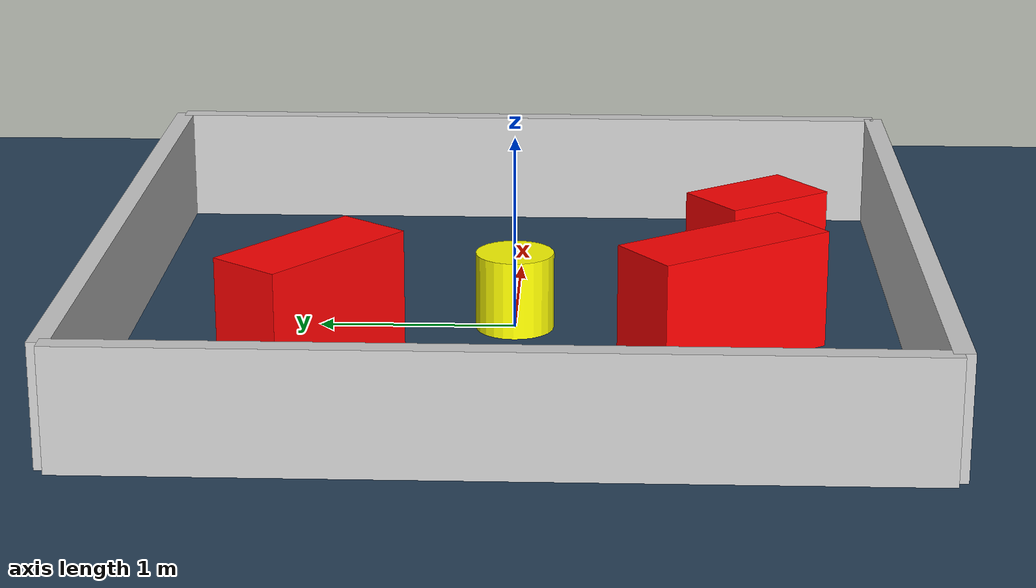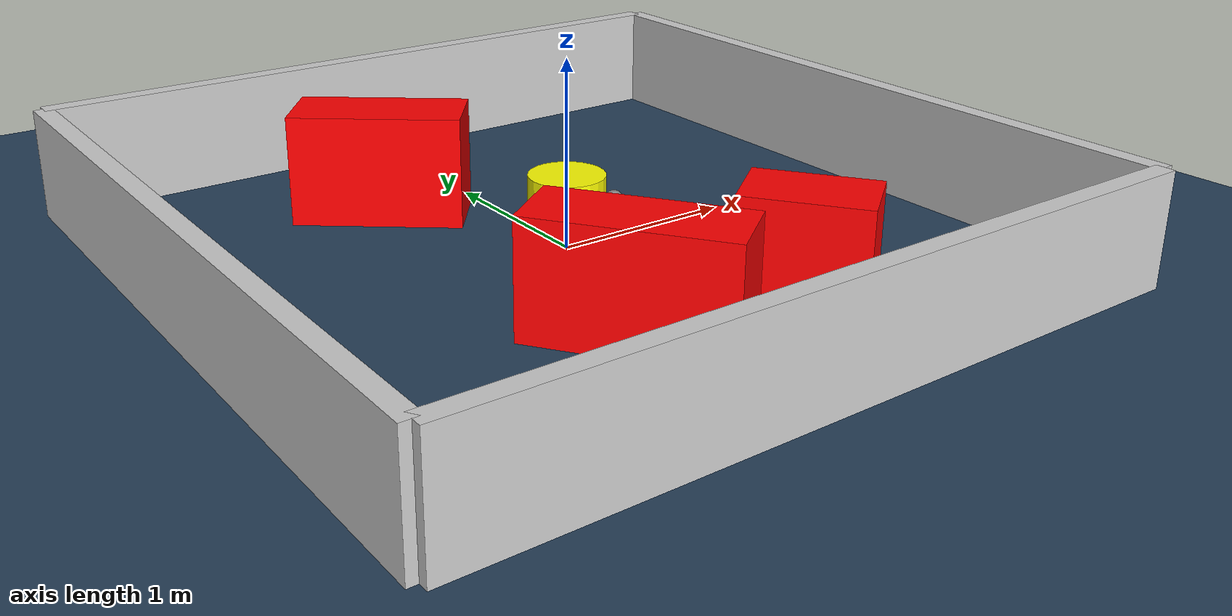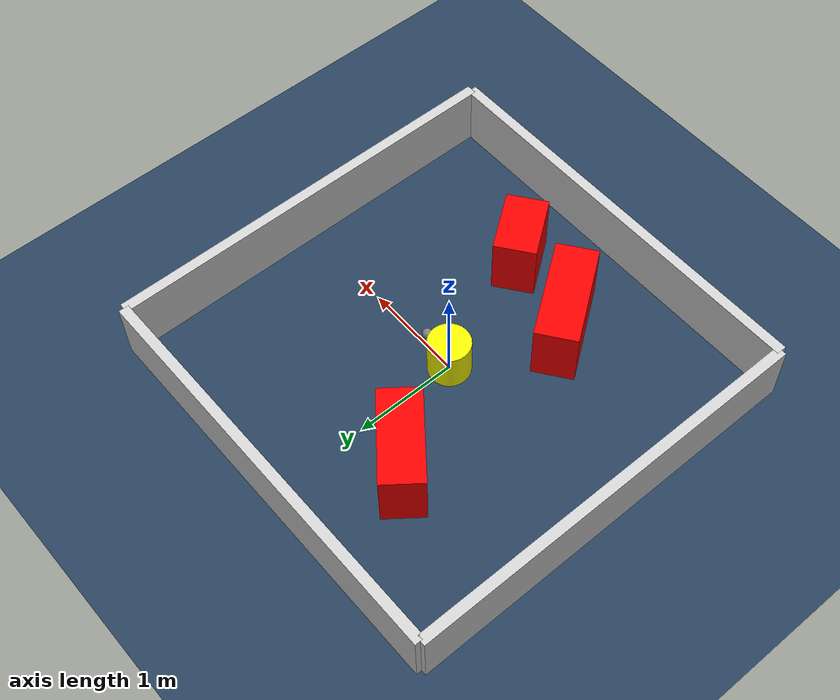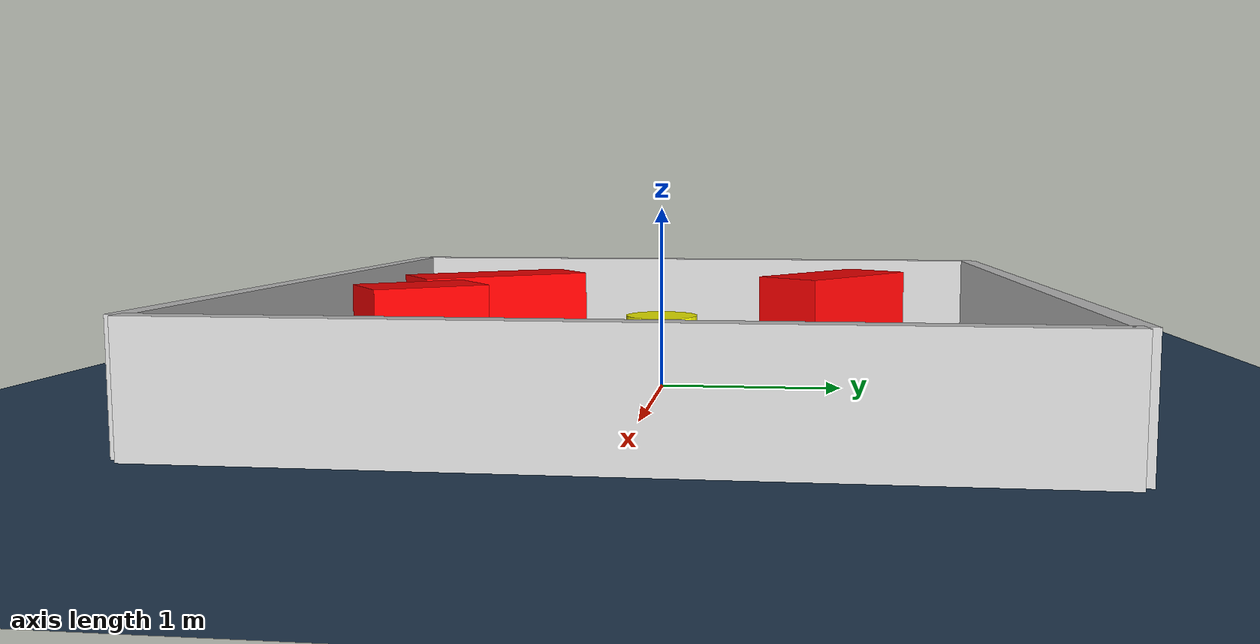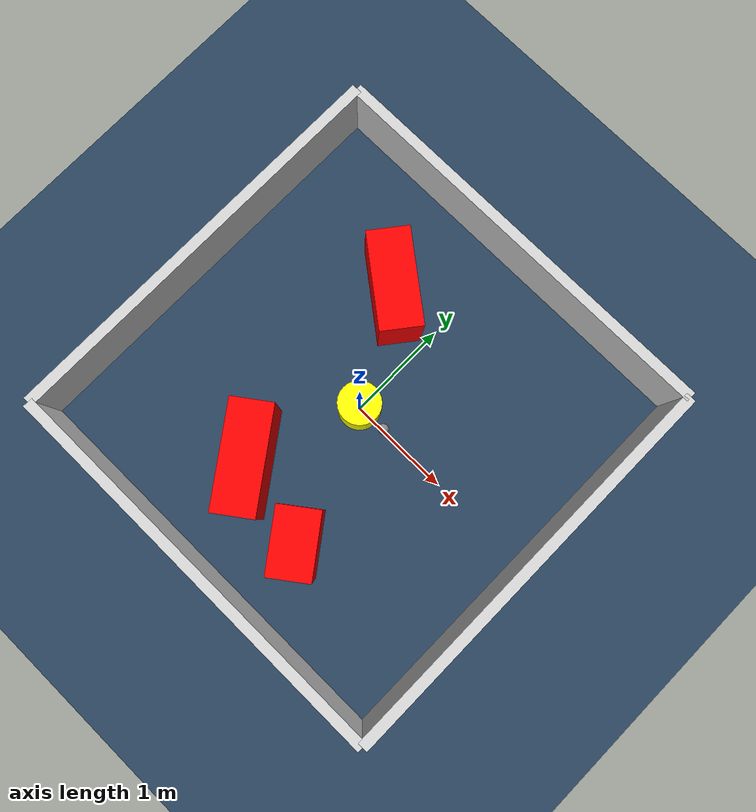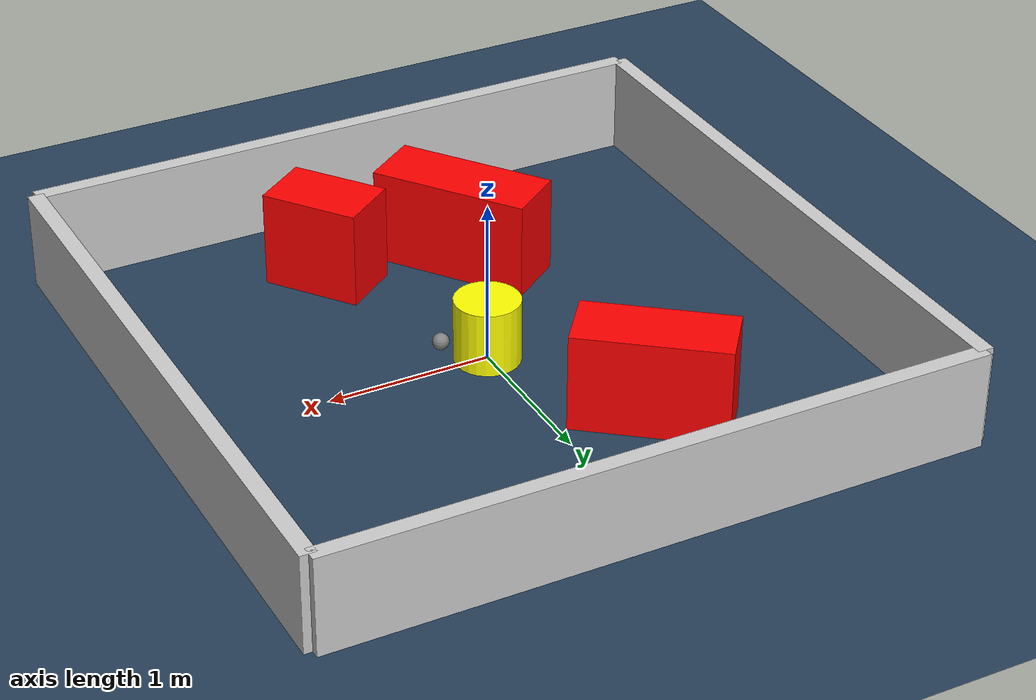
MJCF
<?xml version="1.0" ?>
<mujoco model="generated_environment">
  <option timestep="0.01" integrator="RK4" cone="elliptic"/>
  <default>
    <geom density="1"/>
  </default>
  <asset>
    <texture builtin="gradient" height="3072" rgb1="0.3 0.5 0.7" rgb2="0 0 0" type="skybox" width="512"/>
    <texture builtin="checker" height="300" mark="edge" markrgb="0.8 0.8 0.8" name="groundplane" rgb1="0.2 0.3 0.4" rgb2="0.1 0.2 0.3" type="2d" width="300"/>
    <material name="groundplane" reflectance="0.2" texrepeat="5 5" texture="groundplane" texuniform="true"/>
    <material name="robot" rgba="0.0 1.0 0.0 1"/>
  </asset>
  <worldbody>
    <light dir="0 0 -1" directional="true" pos="0 0 1.5"/>
    <geom condim="4" friction="1.0 0.005 0.001" material="groundplane" name="floor" size="0 0 0.05" type="plane"/>
    <body name="walls">
      <geom name="wall_1" condim="4" pos="-2.0 0.0 0.3" rgba="0.800000011920929 0.800000011920929 0.800000011920929 1.0" size="0.05 2.0 0.3" type="box"/>
      <geom name="wall_2" condim="4" pos="2.0 0.0 0.3" rgba="0.800000011920929 0.800000011920929 0.800000011920929 1.0" size="0.05 2.0 0.3" type="box"/>
      <geom name="wall_3" condim="4" pos="0.0 -2.0 0.3" rgba="0.800000011920929 0.800000011920929 0.800000011920929 1.0" size="2.0 0.05 0.3" type="box"/>
      <geom name="wall_4" condim="4" pos="0.0 2.0 0.3" rgba="0.800000011920929 0.800000011920929 0.800000011920929 1.0" size="2.0 0.05 0.3" type="box"/>
    </body>
    <body name="robot">
      <joint name="joint_x" type="slide" pos="0 0 0" axis="1 0 0"/>
      <joint name="joint_y" type="slide" pos="0 0 0" axis="0 1 0"/>
      <geom name="robot" type="sphere" pos="0.3 0.0 0.2" size="0.05" mass="5." friction="1.0 0.005 0.0001" condim="4" rgba="0.5 0.5 0.5 1.0"/>
      <site name="sensor_ball"/>
    </body>
    <body name="obstacle_movable_1">
      <geom name="obstacle_movable_1" condim="4" pos="0.0 0.0 0.2" euler="0 0 0.0" friction="1.0 0.005 0.001" rgba="1.0 1.0 0.0 1.0" size="0.2 0.2 0.0" type="cylinder" mass="0.1"/>
      <joint type="free"/>
    </body>
    <body name="obstacle_2_static">
      <geom name="obstacle_2_static" condim="4" pos="-0.5337520730281597 0.9802217536006765 0.3" euler="0 0 141.99399856470316" friction="1.0 0.005 0.001" rgba="1 0 0 1" size="0.4563990791732344 0.2 0.3" type="box"/>
    </body>
    <body name="obstacle_3_static">
      <geom name="obstacle_3_static" condim="4" pos="0.45482037497600647 -1.2465843123330556 0.3" euler="0 0 126.49802265204754" friction="1.0 0.005 0.001" rgba="1 0 0 1" size="0.3084899773210914 0.2 0.3" type="box"/>
    </body>
    <body name="obstacle_4_static">
      <geom name="obstacle_4_static" condim="4" pos="-0.36488912171706867 -1.0436897380049692 0.3" euler="0 0 305.8968202958698" friction="1.0 0.005 0.001" rgba="1 0 0 1" size="0.5013541468839705 0.2 0.3" type="box"/>
    </body>
  </worldbody>
  <actuator>
    <motor name="actuator_x" joint="joint_x" gear="1" ctrlrange="-1 1"/>
    <motor name="actuator_y" joint="joint_y" gear="1" ctrlrange="-1 1"/>
  </actuator>
</mujoco>
